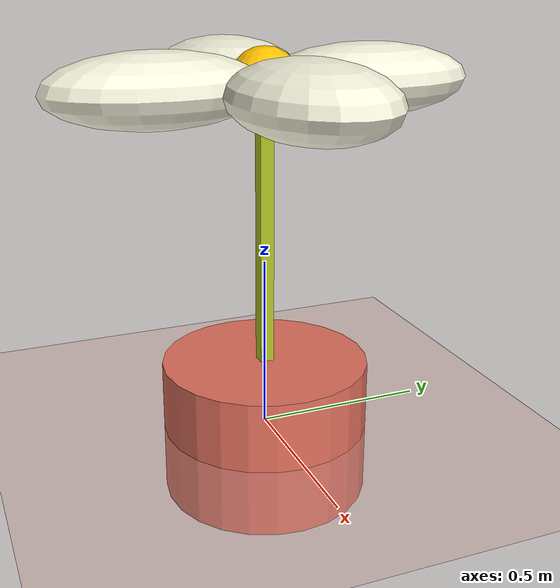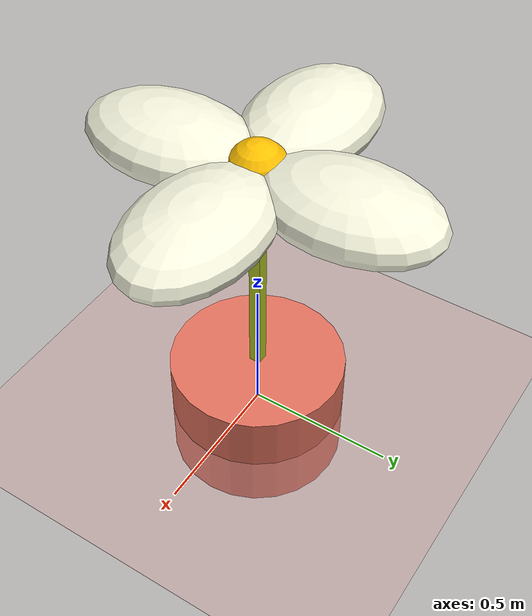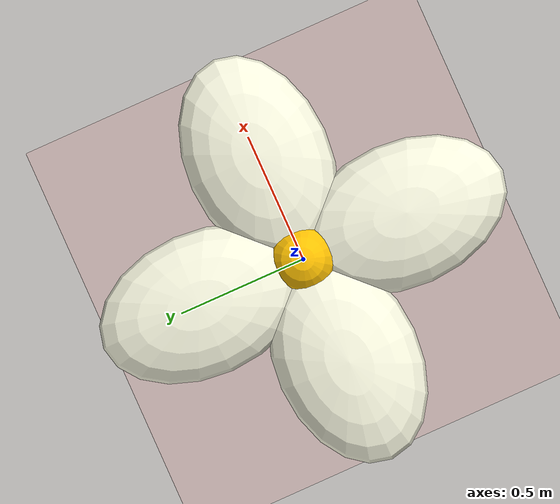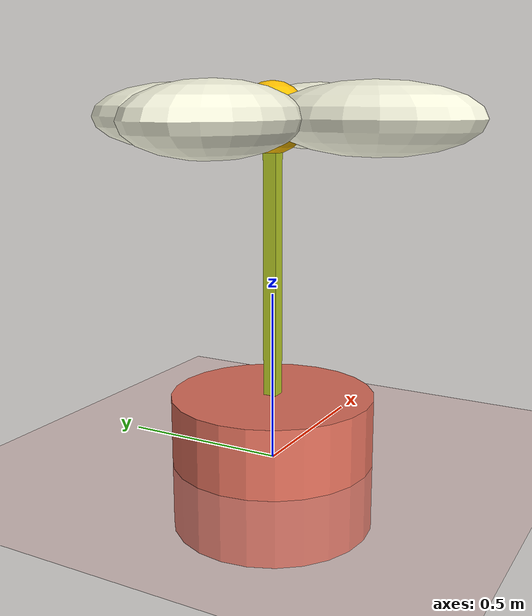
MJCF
<mujoco>
    <option timestep="0.1"/>

    <worldbody>
        <light diffuse=".5 .5 .5" pos="0 0 3" dir="0 0 -1"/>
        <geom name="floor" type="plane" size="2 2 0.1" rgba=".85 0.6 0.6 1"/>
        <body>
            <freejoint name="root"/>
            <geom name="stem" pos="0 0 0.5" type="box" size=".02 .02 .5" rgba=".70 0.77 0.14 1"/>
            <body name="pot" pos="0 0 0">
                <geom name="pot" type="cylinder" size="0.3 0.2" rgba=".88 0.44 0.36 1"/>
            </body>
            <body name="center" pos="0 0 1">
                <geom name="center" type="sphere" size="0.1" rgba=".99 0.75 0 1"/>
            </body>
            <body name="petal1" pos="0 0.3 1">
                <geom name="petal1" type="ellipsoid" size="0.2 0.3 0.1" rgba=".95 0.95 0.86 1"/>
                <joint name="petal1hinge" pos="0 -0.15 0" axis="1 0 0" range="-5 5" limited="true"/>
            </body>
            <body name="petal2" pos="0 -0.3 1">
                <geom name="petal2" type="ellipsoid" size="0.2 0.3 0.1" rgba=".95 0.95 0.86 1"/>
                <joint name="petal2hinge" pos="0 0.15 0" axis="1 0 0" range="-5 5" limited="true"/>
            </body>
            <body name="petal3" pos="0.3 0 1">
                <geom name="petal3" type="ellipsoid" size="0.3 0.2 0.1" rgba=".95 0.95 0.86 1"/>
                <joint name="petal3hinge" pos="-0.15 0 0" axis="0 1 0" range="-5 5" limited="true"/>
            </body>
            <body name="petal4" pos="-0.3 0 1">
                <geom name="petal4" type="ellipsoid" size="0.3 0.2 0.1" rgba=".95 0.95 0.86 1"/>
                <joint name="petal4hinge" pos="0.15 0 0" axis="0 1 0" range="-5 5" limited="true"/>
            </body>
        </body>
    </worldbody>

    <actuator>
        <motor name="petal1hinge" gear="50" joint="petal1hinge"/>
        <motor name="petal2hinge" gear="50" joint="petal2hinge"/>
        <motor name="petal3hinge" gear="50" joint="petal3hinge"/>
        <motor name="petal4hinge" gear="50" joint="petal4hinge"/>
    </actuator>

</mujoco>
